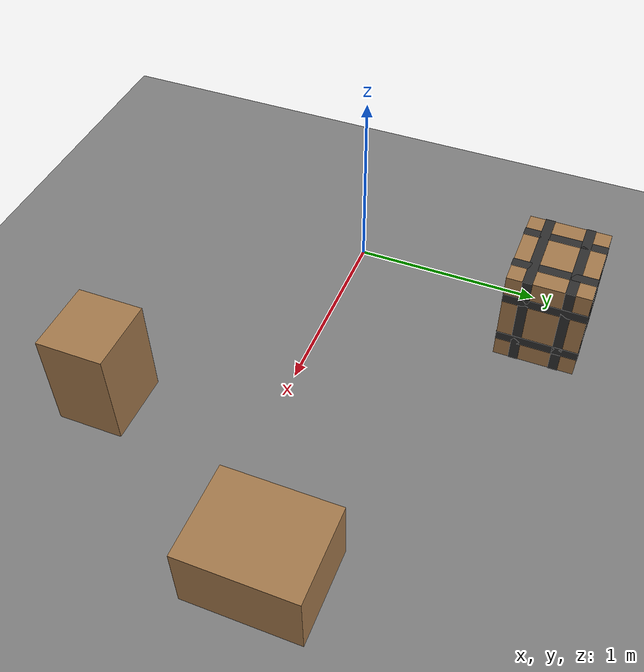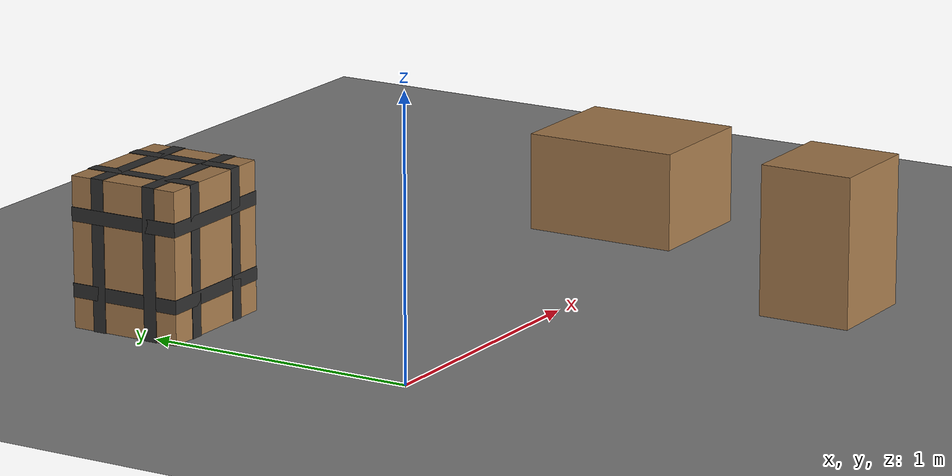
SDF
<sdf version="1.9">
 <world name="ecps295_lowbox_s2_monitor">
  <model name="ground_plane">
   <static>true</static>
   <link name="link">
    <collision name="collision">
     <geometry><plane><normal>0 0 1</normal><size>50 50</size></plane></geometry>
    </collision>
    <visual name="visual">
     <geometry><plane><normal>0 0 1</normal><size>50 50</size></plane></geometry>
     <material><ambient>0.5 0.5 0.5 1</ambient><diffuse>0.5 0.5 0.5 1</diffuse></material>
    </visual>
   </link>
  </model>
  <model name="lb0">
   <static>true</static>
   <pose>1.48 -0.8 0.272 0 0 0</pose>
   <link name="link">
    <collision name="c"><geometry><box><size>0.37 0.34 0.54</size></box></geometry></collision>
    <visual name="v">
     <geometry><box><size>0.37 0.34 0.54</size></box></geometry>
     <material><ambient>0.65 0.48 0.30 1</ambient><diffuse>0.65 0.48 0.30 1</diffuse></material>
    </visual>
   </link>
  </model>
  <model name="lb2">
   <static>true</static>
   <pose>2.08 0.32 0.18 0 0 0</pose>
   <link name="link">
    <collision name="c"><geometry><box><size>0.47 0.58 0.36</size></box></geometry></collision>
    <visual name="v">
     <geometry><box><size>0.47 0.58 0.36</size></box></geometry>
     <material><ambient>0.65 0.48 0.30 1</ambient><diffuse>0.65 0.48 0.30 1</diffuse></material>
    </visual>
   </link>
  </model>
  <model name="lb3">
   <static>true</static>
   <pose>0.22 1.11 0.268 0 0 0</pose>
   <link name="link">
    <collision name="c"><geometry><box><size>0.49 0.42 0.54</size></box></geometry></collision>
    <visual name="v">
     <geometry><box><size>0.49 0.42 0.54</size></box></geometry>
     <material><ambient>0.65 0.48 0.30 1</ambient><diffuse>0.65 0.48 0.30 1</diffuse></material>
    </visual>
    <visual name="tape_ring0">
     <pose>0.000 0.000 -0.135 0 0 0</pose>
     <geometry><box><size>0.494 0.424 0.050</size></box></geometry>
     <material><ambient>0.18 0.18 0.18 1</ambient><diffuse>0.18 0.18 0.18 1</diffuse></material>
    </visual>
    <visual name="tape_bx0">
     <pose>-0.122 0.000 0.000 0 0 0</pose>
     <geometry><box><size>0.050 0.424 0.544</size></box></geometry>
     <material><ambient>0.18 0.18 0.18 1</ambient><diffuse>0.18 0.18 0.18 1</diffuse></material>
    </visual>
    <visual name="tape_by0">
     <pose>0.000 -0.105 0.000 0 0 0</pose>
     <geometry><box><size>0.494 0.050 0.544</size></box></geometry>
     <material><ambient>0.18 0.18 0.18 1</ambient><diffuse>0.18 0.18 0.18 1</diffuse></material>
    </visual>
    <visual name="tape_ring1">
     <pose>0.000 0.000 0.135 0 0 0</pose>
     <geometry><box><size>0.494 0.424 0.050</size></box></geometry>
     <material><ambient>0.18 0.18 0.18 1</ambient><diffuse>0.18 0.18 0.18 1</diffuse></material>
    </visual>
    <visual name="tape_bx1">
     <pose>0.122 0.000 0.000 0 0 0</pose>
     <geometry><box><size>0.050 0.424 0.544</size></box></geometry>
     <material><ambient>0.18 0.18 0.18 1</ambient><diffuse>0.18 0.18 0.18 1</diffuse></material>
    </visual>
    <visual name="tape_by1">
     <pose>0.000 0.105 0.000 0 0 0</pose>
     <geometry><box><size>0.494 0.050 0.544</size></box></geometry>
     <material><ambient>0.18 0.18 0.18 1</ambient><diffuse>0.18 0.18 0.18 1</diffuse></material>
    </visual>
   </link>
  </model>
 </world>
</sdf>
